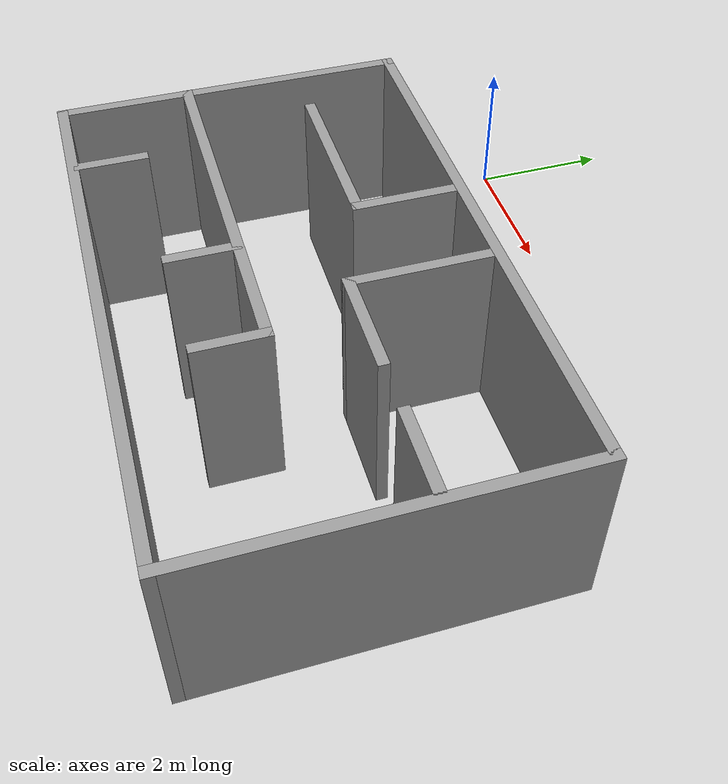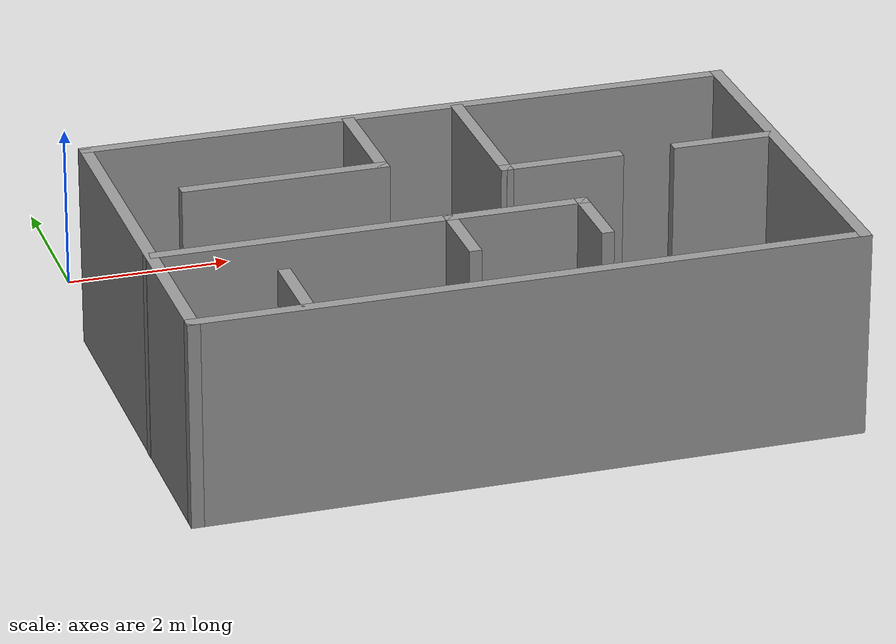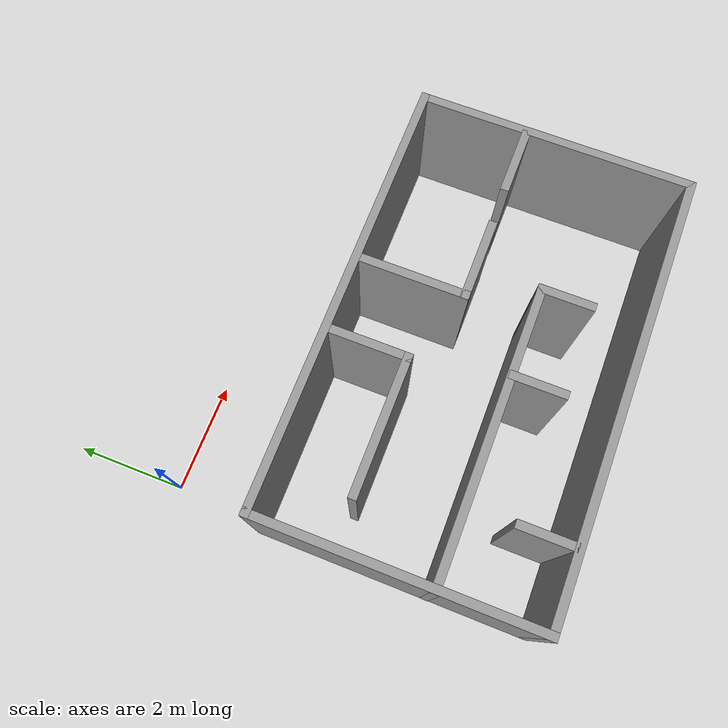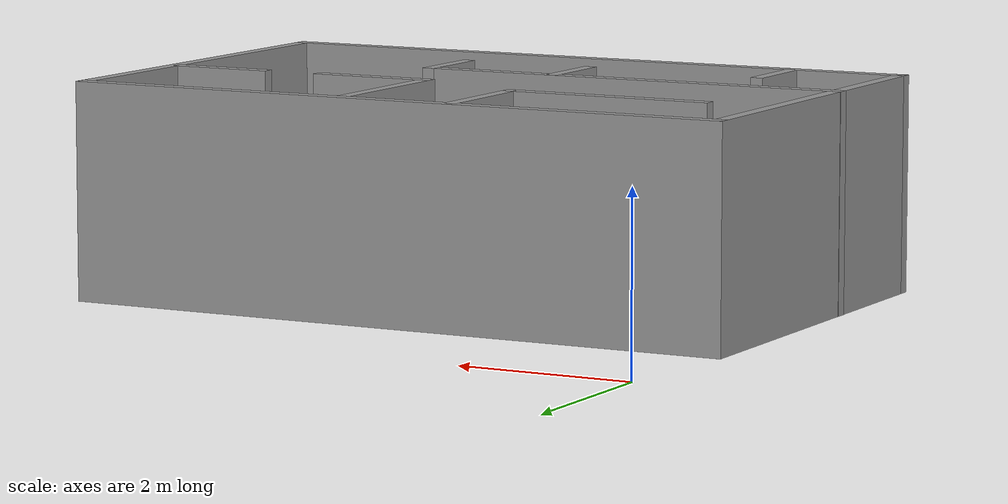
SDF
<?xml version='1.0'?>
<sdf version='1.7'>
  <model name='room'>
    <pose>3.77666 -3.32188 0 0 -0 0</pose>
    <link name='Wall_0'>
      <collision name='Wall_0_Collision'>
        <geometry>
          <box>
            <size>8 0.15 2.5</size>
          </box>
        </geometry>
        <pose>0 0 1.25 0 -0 0</pose>
      </collision>
      <visual name='Wall_0_Visual'>
        <pose>0 0 1.25 0 -0 0</pose>
        <geometry>
          <box>
            <size>8 0.15 2.5</size>
          </box>
        </geometry>
        <material>
          <script>
            <uri>file://media/materials/scripts/gazebo.material</uri>
            <name>Gazebo/Grey</name>
          </script>
          <ambient>1 1 1 1</ambient>
        </material>
        <meta>
          <layer>0</layer>
        </meta>
      </visual>
      <pose>0.002259 1.60312 0 0 -0 0</pose>
    </link>
    <link name='Wall_10'>
      <collision name='Wall_10_Collision'>
        <geometry>
          <box>
            <size>5.25 0.15 2.5</size>
          </box>
        </geometry>
        <pose>0 0 1.25 0 -0 0</pose>
      </collision>
      <visual name='Wall_10_Visual'>
        <pose>0 0 1.25 0 -0 0</pose>
        <geometry>
          <box>
            <size>5.25 0.15 2.5</size>
          </box>
        </geometry>
        <material>
          <script>
            <uri>file://media/materials/scripts/gazebo.material</uri>
            <name>Gazebo/Grey</name>
          </script>
          <ambient>1 1 1 1</ambient>
        </material>
        <meta>
          <layer>0</layer>
        </meta>
      </visual>
      <pose>-1.37726 -1.45219 0 0 -0 0</pose>
    </link>
    <link name='Wall_11'>
      <collision name='Wall_11_Collision'>
        <geometry>
          <box>
            <size>1 0.15 2.5</size>
          </box>
        </geometry>
        <pose>0 0 1.25 0 -0 0</pose>
      </collision>
      <visual name='Wall_11_Visual'>
        <pose>0 0 1.25 0 -0 0</pose>
        <geometry>
          <box>
            <size>1 0.15 2.5</size>
          </box>
        </geometry>
        <material>
          <script>
            <uri>file://media/materials/scripts/gazebo.material</uri>
            <name>Gazebo/Grey</name>
          </script>
          <ambient>1 1 1 1</ambient>
        </material>
        <meta>
          <layer>0</layer>
        </meta>
      </visual>
      <pose>1.17274 -1.87719 0 0 -0 -1.5708</pose>
    </link>
    <link name='Wall_13'>
      <collision name='Wall_13_Collision'>
        <geometry>
          <box>
            <size>1 0.15 2.5</size>
          </box>
        </geometry>
        <pose>0 0 1.25 0 -0 0</pose>
      </collision>
      <visual name='Wall_13_Visual'>
        <pose>0 0 1.25 0 -0 0</pose>
        <geometry>
          <box>
            <size>1 0.15 2.5</size>
          </box>
        </geometry>
        <material>
          <script>
            <uri>file://media/materials/scripts/gazebo.material</uri>
            <name>Gazebo/Grey</name>
          </script>
          <ambient>1 1 1 1</ambient>
        </material>
        <meta>
          <layer>0</layer>
        </meta>
      </visual>
      <pose>-2.59594 -2.73161 0 0 -0 1.5708</pose>
    </link>
    <link name='Wall_15'>
      <collision name='Wall_15_Collision'>
        <geometry>
          <box>
            <size>1 0.15 2.5</size>
          </box>
        </geometry>
        <pose>0 0 1.25 0 -0 0</pose>
      </collision>
      <visual name='Wall_15_Visual'>
        <pose>0 0 1.25 0 -0 0</pose>
        <geometry>
          <box>
            <size>1 0.15 2.5</size>
          </box>
        </geometry>
        <material>
          <script>
            <uri>file://media/materials/scripts/gazebo.material</uri>
            <name>Gazebo/Grey</name>
          </script>
          <ambient>1 1 1 1</ambient>
        </material>
        <meta>
          <layer>0</layer>
        </meta>
      </visual>
      <pose>-0.408176 -1.90262 0 0 -0 -1.5708</pose>
    </link>
    <link name='Wall_17'>
      <collision name='Wall_17_Collision'>
        <geometry>
          <box>
            <size>2 0.15 2.5</size>
          </box>
        </geometry>
        <pose>0 0 1.25 0 -0 0</pose>
      </collision>
      <visual name='Wall_17_Visual'>
        <pose>0 0 1.25 0 -0 0</pose>
        <geometry>
          <box>
            <size>2 0.15 2.5</size>
          </box>
        </geometry>
        <material>
          <script>
            <uri>file://media/materials/scripts/gazebo.material</uri>
            <name>Gazebo/Grey</name>
          </script>
          <ambient>1 1 1 1</ambient>
        </material>
        <meta>
          <layer>0</layer>
        </meta>
      </visual>
      <pose>0.61787 0.607676 0 0 -0 -1.5708</pose>
    </link>
    <link name='Wall_18'>
      <collision name='Wall_18_Collision'>
        <geometry>
          <box>
            <size>1.5 0.15 2.5</size>
          </box>
        </geometry>
        <pose>0 0 1.25 0 -0 0</pose>
      </collision>
      <visual name='Wall_18_Visual'>
        <pose>0 0 1.25 0 -0 0</pose>
        <geometry>
          <box>
            <size>1.5 0.15 2.5</size>
          </box>
        </geometry>
        <material>
          <script>
            <uri>file://media/materials/scripts/gazebo.material</uri>
            <name>Gazebo/Grey</name>
          </script>
          <ambient>1 1 1 1</ambient>
        </material>
        <meta>
          <layer>0</layer>
        </meta>
      </visual>
      <pose>1.29287 -0.317324 0 0 -0 0</pose>
    </link>
    <link name='Wall_3'>
      <collision name='Wall_3_Collision'>
        <geometry>
          <box>
            <size>5 0.15 2.5</size>
          </box>
        </geometry>
        <pose>0 0 1.25 0 -0 0</pose>
      </collision>
      <visual name='Wall_3_Visual'>
        <pose>0 0 1.25 0 -0 0</pose>
        <geometry>
          <box>
            <size>5 0.15 2.5</size>
          </box>
        </geometry>
        <material>
          <script>
            <uri>file://media/materials/scripts/gazebo.material</uri>
            <name>Gazebo/Grey</name>
          </script>
          <ambient>1 1 1 1</ambient>
        </material>
        <meta>
          <layer>0</layer>
        </meta>
      </visual>
      <pose>3.92726 -0.821885 0 0 -0 -1.5708</pose>
    </link>
    <link name='Wall_30'>
      <collision name='Wall_30_Collision'>
        <geometry>
          <box>
            <size>1.25 0.15 2.5</size>
          </box>
        </geometry>
        <pose>0 0 1.25 0 -0 0</pose>
      </collision>
      <visual name='Wall_30_Visual'>
        <pose>0 0 1.25 0 -0 0</pose>
        <geometry>
          <box>
            <size>1.25 0.15 2.5</size>
          </box>
        </geometry>
        <material>
          <script>
            <uri>file://media/materials/scripts/gazebo.material</uri>
            <name>Gazebo/Grey</name>
          </script>
          <ambient>1 1 1 1</ambient>
        </material>
        <meta>
          <layer>0</layer>
        </meta>
      </visual>
      <pose>3.29873 -0.3012 0 0 -0 0</pose>
    </link>
    <link name='Wall_4'>
      <collision name='Wall_4_Collision'>
        <geometry>
          <box>
            <size>8 0.15 2.5</size>
          </box>
        </geometry>
        <pose>0 0 1.25 0 -0 0</pose>
      </collision>
      <visual name='Wall_4_Visual'>
        <pose>0 0 1.25 0 -0 0</pose>
        <geometry>
          <box>
            <size>8 0.15 2.5</size>
          </box>
        </geometry>
        <material>
          <script>
            <uri>file://media/materials/scripts/gazebo.material</uri>
            <name>Gazebo/Grey</name>
          </script>
          <ambient>1 1 1 1</ambient>
        </material>
        <meta>
          <layer>0</layer>
        </meta>
      </visual>
      <pose>0.002259 -3.24688 0 0 -0 3.14159</pose>
    </link>
    <link name='Wall_5'>
      <collision name='Wall_5_Collision'>
        <geometry>
          <box>
            <size>5 0.15 2.5</size>
          </box>
        </geometry>
        <pose>0 0 1.25 0 -0 0</pose>
      </collision>
      <visual name='Wall_5_Visual'>
        <pose>0 0 1.25 0 -0 0</pose>
        <geometry>
          <box>
            <size>5 0.15 2.5</size>
          </box>
        </geometry>
        <material>
          <script>
            <uri>file://media/materials/scripts/gazebo.material</uri>
            <name>Gazebo/Grey</name>
          </script>
          <ambient>1 1 1 1</ambient>
        </material>
        <meta>
          <layer>0</layer>
        </meta>
      </visual>
      <pose>-3.92274 -0.821885 0 0 -0 1.5708</pose>
    </link>
    <link name='Wall_7'>
      <collision name='Wall_7_Collision'>
        <geometry>
          <box>
            <size>1.5 0.15 2.5</size>
          </box>
        </geometry>
        <pose>0 0 1.25 0 -0 0</pose>
      </collision>
      <visual name='Wall_7_Visual'>
        <pose>0 0 1.25 0 -0 0</pose>
        <geometry>
          <box>
            <size>1.5 0.15 2.5</size>
          </box>
        </geometry>
        <material>
          <script>
            <uri>file://media/materials/scripts/gazebo.material</uri>
            <name>Gazebo/Grey</name>
          </script>
          <ambient>1 1 1 1</ambient>
        </material>
        <meta>
          <layer>0</layer>
        </meta>
      </visual>
      <pose>-0.730406 0.857676 0 0 -0 -1.5708</pose>
    </link>
    <link name='Wall_8'>
      <collision name='Wall_8_Collision'>
        <geometry>
          <box>
            <size>2.5 0.15 2.5</size>
          </box>
        </geometry>
        <pose>0 0 1.25 0 -0 0</pose>
      </collision>
      <visual name='Wall_8_Visual'>
        <pose>0 0 1.25 0 -0 0</pose>
        <geometry>
          <box>
            <size>2.5 0.15 2.5</size>
          </box>
        </geometry>
        <material>
          <script>
            <uri>file://media/materials/scripts/gazebo.material</uri>
            <name>Gazebo/Grey</name>
          </script>
          <ambient>1 1 1 1</ambient>
        </material>
        <meta>
          <layer>0</layer>
        </meta>
      </visual>
      <pose>-1.90541 0.182676 0 0 -0 3.14159</pose>
    </link>
    <static>1</static>
  </model>
</sdf>
